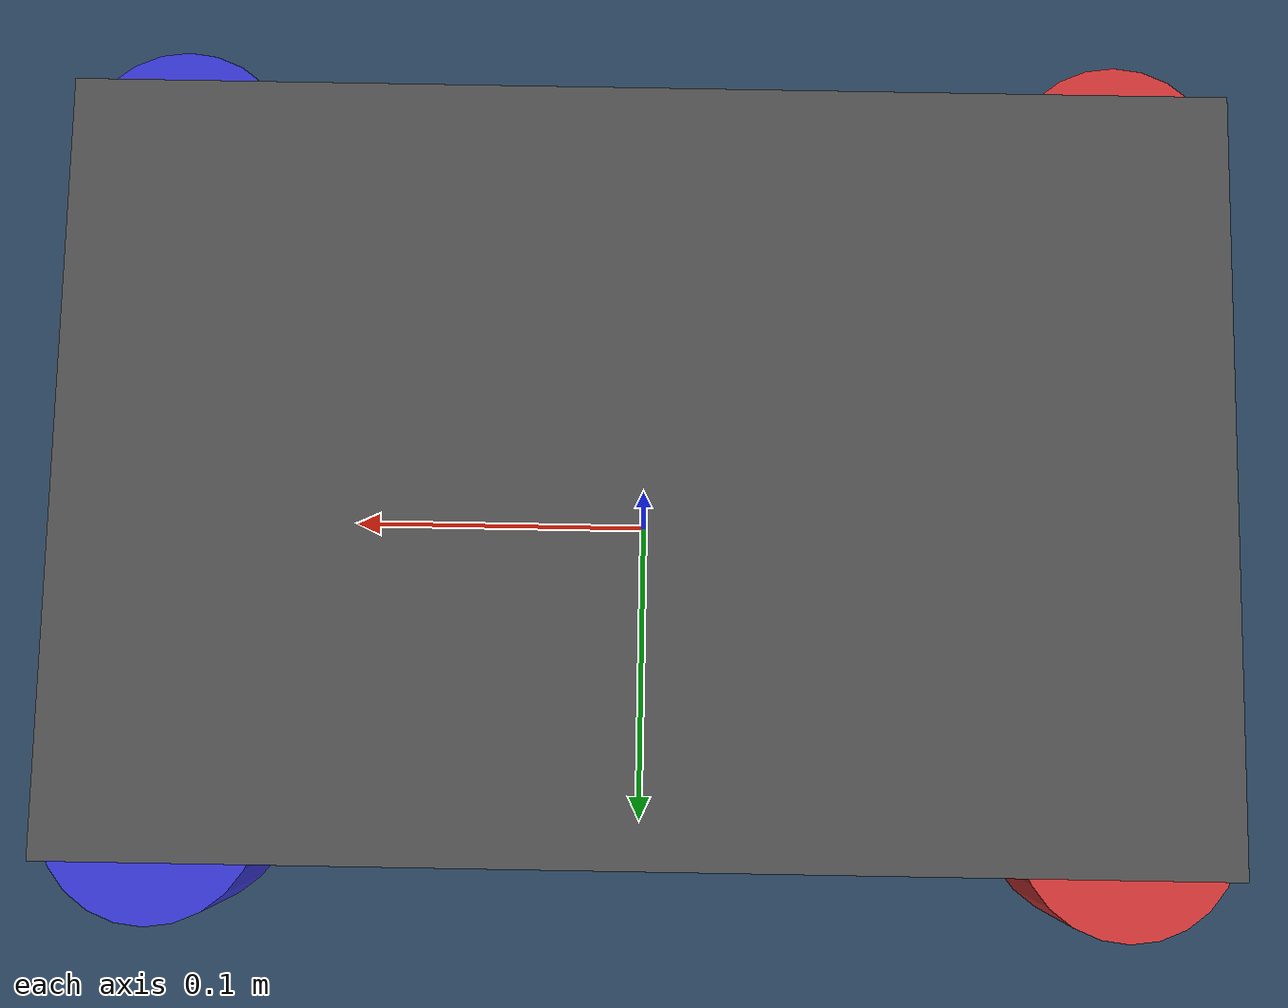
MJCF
<mujoco model="drift_car">
  <compiler inertiafromgeom="true" angle="radian"/>

  <option timestep="0.01" gravity="0 0 -9.81"/>

  <default>
    <joint damping="1" limited="true"/>
    <geom friction="1 0.1 0.001" density="300" condim="3" contype="1" conaffinity="1"/>
    <motor ctrllimited="true" ctrlrange="-1 1"/>
  </default>

  <asset>
    <texture name="texplane" type="2d" builtin="checker" width="256" height="256" rgb1=".2 .3 .4" rgb2=".1 .2 .3"/>
    <material name="matplane" texture="texplane" texrepeat="4 4" reflectance="0.1"/>
  </asset>

  <worldbody>
    <geom name="ground" type="plane" size="20 20 0.1" material="matplane"/>

    <!-- Main Car Body -->
    <body name="chassis" pos="0 0 0.1">
      <freejoint/>
      <geom name="body" type="box" size="0.15 0.1 0.05" rgba="0.3 0.3 0.3 1"/>

      <!-- Front Left: steerable -->
      <body name="front_left_steer" pos="0.13 0.09 0">
        <joint name="steer_fl" type="hinge" axis="0 0 1" range="-0.5 0.5"/>
        <body name="front_left_wheel" pos="0 0 0">
          <joint name="wheel_fl" type="hinge" axis="1 0 0"/>
          <geom type="cylinder" size="0.03 0.02" rgba="0.2 0.2 0.8 1"/>
        </body>
      </body>

      <!-- Front Right: steerable -->
      <body name="front_right_steer" pos="0.13 -0.09 0">
        <joint name="steer_fr" type="hinge" axis="0 0 1" range="-0.5 0.5"/>
        <body name="front_right_wheel" pos="0 0 0">
          <joint name="wheel_fr" type="hinge" axis="1 0 0"/>
          <geom type="cylinder" size="0.03 0.02" rgba="0.2 0.2 0.8 1"/>
        </body>
      </body>

      <!-- Rear Left -->
      <body name="rear_left" pos="-0.13 0.09 0">
        <joint name="wheel_rl" type="hinge" axis="1 0 0"/>
        <geom type="cylinder" size="0.03 0.02" rgba="0.8 0.2 0.2 1"/>
      </body>

      <!-- Rear Right -->
      <body name="rear_right" pos="-0.13 -0.09 0">
        <joint name="wheel_rr" type="hinge" axis="1 0 0"/>
        <geom type="cylinder" size="0.03 0.02" rgba="0.8 0.2 0.2 1"/>
      </body>
    </body>
  </worldbody>

  <actuator>
    <!-- Front wheel steering -->
    <motor name="steer_fl_motor" joint="steer_fl" gear="0.5"/>
    <motor name="steer_fr_motor" joint="steer_fr" gear="0.5"/>

    <!-- Rear wheel drive -->
    <motor name="drive_rl" joint="wheel_rl" gear="100"/>
    <motor name="drive_rr" joint="wheel_rr" gear="100"/>
  </actuator>
</mujoco>
